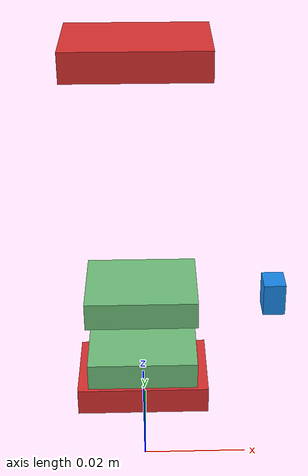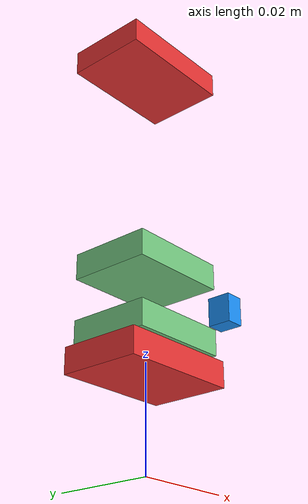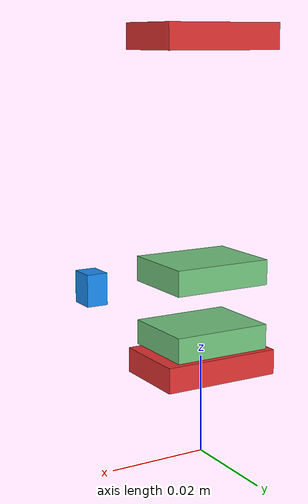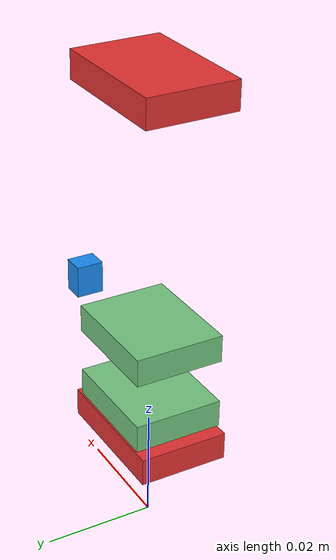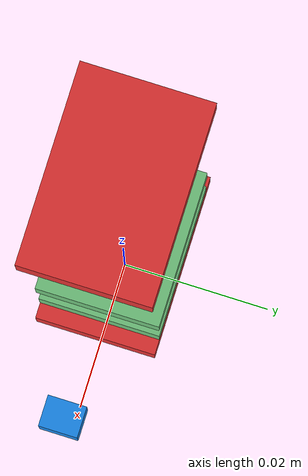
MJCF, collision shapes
<?xml version="1.0" ?>
<mujoco model="contact_screw_lift">
  <compiler angle="radian" autolimits="true" meshdir="/home/ftk3187/github/ASSY/m25_contact_layer/out/sl_assets"/>
  <option timestep="0.0005" integrator="implicitfast" cone="elliptic" impratio="10" gravity="0.000000000 0.000000000 -9.810000000"/>
  <visual>
    <headlight ambient="0.5 0.5 0.5" diffuse="0.6 0.6 0.6" specular="0.2 0.2 0.2"/>
    <global offwidth="1280" offheight="960"/>
  </visual>
  <default>
    <geom solref="0.001 1.0" solimp="0.99 0.9999 0.0001" friction="0.30 0.005 0.0001" condim="4" density="0" contype="0" conaffinity="0"/>
  </default>
  <asset>
    <material name="base" rgba="0.62 0.66 0.72 1"/>
    <material name="screw" rgba="0.95 0.62 0.25 1"/>
    <material name="nut" rgba="0.45 0.78 0.5 1"/>
    <material name="crank" rgba="0.85 0.35 0.35 1"/>
    <material name="stop" rgba="0.90 0.20 0.20 1"/>
    <material name="mk" rgba="0.10 0.55 0.95 1"/>
    <mesh name="m_base" file="base.stl"/>
    <mesh name="m_screw" file="screw.stl"/>
    <mesh name="m_nut" file="nut.stl"/>
    <mesh name="m_crank" file="crank.stl"/>
  </asset>
  <worldbody>
    <light pos="0.1 -0.2 0.4" dir="-0.2 0.3 -1" directional="true" diffuse="0.5 0.5 0.5"/>
    <camera name="side" pos="0.19 -0.24 0.055" xyaxes="0.78 0.62 0 -0.14 0.18 0.98"/>
    <geom name="top_collar" type="box" pos="0.000000000 0.000000000 0.082500000" size="0.012000000 0.008000000 0.002500000" material="stop"/>
    <geom name="bottom_stop" type="box" pos="0.000000000 0.000000000 0.019000000" size="0.012000000 0.008000000 0.002500000" material="stop"/>
    <geom name="frame_mesh" type="mesh" mesh="m_base" material="base"/>
    <geom name="screw_mesh" type="mesh" mesh="m_screw" material="screw"/>
    <geom name="crank_mesh" type="mesh" mesh="m_crank" material="crank"/>
    <body name="nut" pos="0.000000000 0.000000000 0.000000000">
      <inertial mass="0.020000000" pos="0.000000000 0.000000000 0.030000000" diaginertia="0.000001233 0.000001233 0.000002253"/>
      <joint name="nut_slide" type="slide" axis="0.000000000 0.000000000 1.000000000" pos="0.000000000 0.000000000 0.000000000" damping="0.5" limited="false"/>
      <geom name="nut_top" type="box" pos="0.000000000 0.000000000 0.037500000" size="0.010000000 0.008000000 0.002500000" material="nut"/>
      <geom name="nut_bot" type="box" pos="0.000000000 0.000000000 0.024500000" size="0.010000000 0.008000000 0.002500000" material="nut"/>
      <geom name="nut_mesh" type="mesh" mesh="m_nut" material="nut"/>
      <geom name="mk_nut" type="box" pos="0.024000000 0.000000000 0.037000000" size="0.002000000 0.002500000 0.003000000" material="mk"/>
    </body>
  </worldbody>
  <contact>
    <pair geom1="nut_top" geom2="top_collar" condim="4" solref="0.001 1.0" solimp="0.99 0.9999 0.0001" friction="0.30 0.005 0.0001"/>
    <pair geom1="nut_bot" geom2="bottom_stop" condim="4" solref="0.001 1.0" solimp="0.99 0.9999 0.0001" friction="0.30 0.005 0.0001"/>
  </contact>
  <actuator>
    <velocity name="drive" joint="nut_slide" kv="100.0"/>
  </actuator>
</mujoco>
